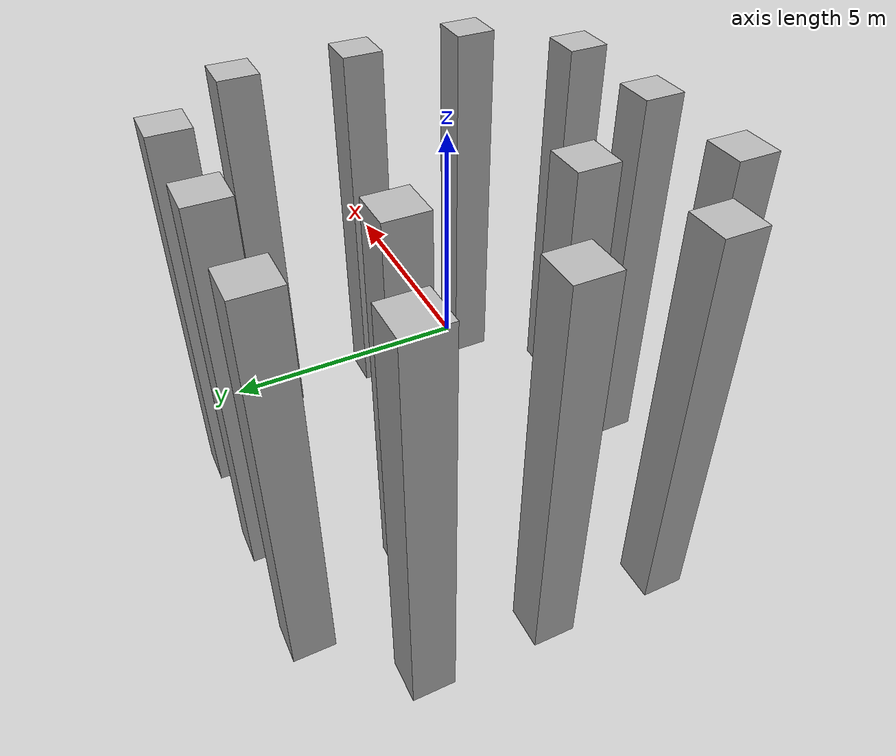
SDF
<sdf version="1.6">
 <world name="underwater_world">
  <plugin filename="gz-sim-physics-system" name="gz::sim::systems::Physics"/>
  <plugin filename="gz-sim-user-commands-system" name="gz::sim::systems::UserCommands"/>
  <plugin filename="gz-sim-scene-broadcaster-system" name="gz::sim::systems::SceneBroadcaster"/>
  <plugin filename="libgz-sim8-dvl-system" name="gz::sim::systems::DopplerVelocityLogSystem"/>
  <plugin filename="libgz-sim-imu-system.so" name="gz::sim::systems::Imu"/>
  <plugin filename="gz-sim-buoyancy-system" name="gz::sim::systems::Buoyancy">
   <graded_buoyancy>
    <default_density>1000</default_density>
    <density_change><above_depth>0</above_depth><density>1</density></density_change>
   </graded_buoyancy>
  </plugin>
  <plugin filename="libcurrent_system.so" name="CurrentSystem">
   <vx>0.0</vx>
   <vy>0.0</vy>
   <vz>0.0</vz>
   <rho>1000.0</rho>
   <drag_coeff>0.8</drag_coeff>
   <area>0.03</area>
   <affected_models><model>bluerov2</model></affected_models>
  </plugin>
  <include><uri>https://fuel.gazebosim.org/1.0/OpenRobotics/models/Sun</uri></include>
  <include><uri>model://ego_test</uri></include>
  <scene><ambient>1.0 1.0 1.0</ambient><background>0.8 0.8 0.8</background></scene>
  <light type="directional" name="sun1">
   <pose>50 0 150 0 0 0</pose>
   <diffuse>1 1 1 1</diffuse>
   <specular>.1 .1 .1 1</specular>
   <direction>0.3 0.3 -1</direction>
   <cast_shadows>false</cast_shadows>
  </light>
 </world>
</sdf>

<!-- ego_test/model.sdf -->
<!-- Luis Blunschi pillar field, square posts -->
<sdf version="1.6">
  <model name="pillar_field">
    <static>true</static>

    <link name="pillars">

      <!-- Shared geometry:
           box 1 x 1 x 10 (z from -5 to +5), centered at z = 0 -->

      <!-- Pillar at (5, 3) -->
      <collision name="pillar_5_3_collision">
        <pose>5 3 0 0 0 0</pose>
        <geometry>
          <box>
            <size>1 1 10</size>
          </box>
        </geometry>
      </collision>
      <visual name="pillar_5_3_visual">
        <pose>5 3 0 0 0 0</pose>
        <geometry>
          <box>
            <size>1 1 10</size>
          </box>
        </geometry>
        <material>
          <ambient>0.7 0.7 0.7 1</ambient>
          <diffuse>0.7 0.7 0.7 1</diffuse>
        </material>
      </visual>

      <!-- Pillar at (5, 0) -->
      <collision name="pillar_5_0_collision">
        <pose>5 0 0 0 0 0</pose>
        <geometry>
          <box>
            <size>1 1 10</size>
          </box>
        </geometry>
      </collision>
      <visual name="pillar_5_0_visual">
        <pose>5 0 0 0 0 0</pose>
        <geometry>
          <box>
            <size>1 1 10</size>
          </box>
        </geometry>
        <material>
          <ambient>0.7 0.7 0.7 1</ambient>
          <diffuse>0.7 0.7 0.7 1</diffuse>
        </material>
      </visual>

      <!-- Pillar at (5, -3) -->
      <collision name="pillar_5_-3_collision">
        <pose>5 -3 0 0 0 0</pose>
        <geometry>
          <box>
            <size>1 1 10</size>
          </box>
        </geometry>
      </collision>
      <visual name="pillar_5_-3_visual">
        <pose>5 -3 0 0 0 0</pose>
        <geometry>
          <box>
            <size>1 1 10</size>
          </box>
        </geometry>
        <material>
          <ambient>0.7 0.7 0.7 1</ambient>
          <diffuse>0.7 0.7 0.7 1</diffuse>
        </material>
      </visual>

      <!-- Pillar at (0, 5) -->
      <collision name="pillar_0_5_collision">
        <pose>0 5 0 0 0 0</pose>
        <geometry>
          <box>
            <size>1 1 10</size>
          </box>
        </geometry>
      </collision>
      <visual name="pillar_0_5_visual">
        <pose>0 5 0 0 0 0</pose>
        <geometry>
          <box>
            <size>1 1 10</size>
          </box>
        </geometry>
        <material>
          <ambient>0.7 0.7 0.7 1</ambient>
          <diffuse>0.7 0.7 0.7 1</diffuse>
        </material>
      </visual>

      <!-- Pillar at (0, -5) -->
      <collision name="pillar_0_-5_collision">
        <pose>0 -5 0 0 0 0</pose>
        <geometry>
          <box>
            <size>1 1 10</size>
          </box>
        </geometry>
      </collision>
      <visual name="pillar_0_-5_visual">
        <pose>0 -5 0 0 0 0</pose>
        <geometry>
          <box>
            <size>1 1 10</size>
          </box>
        </geometry>
        <material>
          <ambient>0.7 0.7 0.7 1</ambient>
          <diffuse>0.7 0.7 0.7 1</diffuse>
        </material>
      </visual>

      <!-- Pillar at (-5, 3) -->
      <collision name="pillar_-5_3_collision">
        <pose>-5 3 0 0 0 0</pose>
        <geometry>
          <box>
            <size>1 1 10</size>
          </box>
        </geometry>
      </collision>
      <visual name="pillar_-5_3_visual">
        <pose>-5 3 0 0 0 0</pose>
        <geometry>
          <box>
            <size>1 1 10</size>
          </box>
        </geometry>
        <material>
          <ambient>0.7 0.7 0.7 1</ambient>
          <diffuse>0.7 0.7 0.7 1</diffuse>
        </material>
      </visual>

      <!-- Pillar at (-5, 0) -->
      <collision name="pillar_-5_0_collision">
        <pose>-5 0 0 0 0 0</pose>
        <geometry>
          <box>
            <size>1 1 10</size>
          </box>
        </geometry>
      </collision>
      <visual name="pillar_-5_0_visual">
        <pose>-5 0 0 0 0 0</pose>
        <geometry>
          <box>
            <size>1 1 10</size>
          </box>
        </geometry>
        <material>
          <ambient>0.7 0.7 0.7 1</ambient>
          <diffuse>0.7 0.7 0.7 1</diffuse>
        </material>
      </visual>

      <!-- Pillar at (-5, -3) -->
      <collision name="pillar_-5_-3_collision">
        <pose>-5 -3 0 0 0 0</pose>
        <geometry>
          <box>
            <size>1 1 10</size>
          </box>
        </geometry>
      </collision>
      <visual name="pillar_-5_-3_visual">
        <pose>-5 -3 0 0 0 0</pose>
        <geometry>
          <box>
            <size>1 1 10</size>
          </box>
        </geometry>
        <material>
          <ambient>0.7 0.7 0.7 1</ambient>
          <diffuse>0.7 0.7 0.7 1</diffuse>
        </material>
      </visual>

      <!-- Pillar at (3, 5) -->
      <collision name="pillar_3_5_collision">
        <pose>3 5 0 0 0 0</pose>
        <geometry>
          <box>
            <size>1 1 10</size>
          </box>
        </geometry>
      </collision>
      <visual name="pillar_3_5_visual">
        <pose>3 5 0 0 0 0</pose>
        <geometry>
          <box>
            <size>1 1 10</size>
          </box>
        </geometry>
        <material>
          <ambient>0.7 0.7 0.7 1</ambient>
          <diffuse>0.7 0.7 0.7 1</diffuse>
        </material>
      </visual>

      <!-- Pillar at (-3, -5) -->
      <collision name="pillar_-3_-5_collision">
        <pose>-3 -5 0 0 0 0</pose>
        <geometry>
          <box>
            <size>1 1 10</size>
          </box>
        </geometry>
      </collision>
      <visual name="pillar_-3_-5_visual">
        <pose>-3 -5 0 0 0 0</pose>
        <geometry>
          <box>
            <size>1 1 10</size>
          </box>
        </geometry>
        <material>
          <ambient>0.7 0.7 0.7 1</ambient>
          <diffuse>0.7 0.7 0.7 1</diffuse>
        </material>
      </visual>

      <!-- Pillar at (-3, 5) -->
      <collision name="pillar_-3_5_collision">
        <pose>-3 5 0 0 0 0</pose>
        <geometry>
          <box>
            <size>1 1 10</size>
          </box>
        </geometry>
      </collision>
      <visual name="pillar_-3_5_visual">
        <pose>-3 5 0 0 0 0</pose>
        <geometry>
          <box>
            <size>1 1 10</size>
          </box>
        </geometry>
        <material>
          <ambient>0.7 0.7 0.7 1</ambient>
          <diffuse>0.7 0.7 0.7 1</diffuse>
        </material>
      </visual>

      <!-- Pillar at (3, -5) -->
      <collision name="pillar_3_-5_collision">
        <pose>3 -5 0 0 0 0</pose>
        <geometry>
          <box>
            <size>1 1 10</size>
          </box>
        </geometry>
      </collision>
      <visual name="pillar_3_-5_visual">
        <pose>3 -5 0 0 0 0</pose>
        <geometry>
          <box>
            <size>1 1 10</size>
          </box>
        </geometry>
        <material>
          <ambient>0.7 0.7 0.7 1</ambient>
          <diffuse>0.7 0.7 0.7 1</diffuse>
        </material>
      </visual>

      <!-- Pillar at (-2, 2) -->
      <collision name="pillar_-2_2_collision">
        <pose>-2 2 0 0 0 0</pose>
        <geometry>
          <box>
            <size>1 1 10</size>
          </box>
        </geometry>
      </collision>
      <visual name="pillar_-2_2_visual">
        <pose>-2 2 0 0 0 0</pose>
        <geometry>
          <box>
            <size>1 1 10</size>
          </box>
        </geometry>
        <material>
          <ambient>0.7 0.7 0.7 1</ambient>
          <diffuse>0.7 0.7 0.7 1</diffuse>
        </material>
      </visual>

      <!-- Pillar at (-2, -2) -->
      <collision name="pillar_-2_-2_collision">
        <pose>-2 -2 0 0 0 0</pose>
        <geometry>
          <box>
            <size>1 1 10</size>
          </box>
        </geometry>
      </collision>
      <visual name="pillar_-2_-2_visual">
        <pose>-2 -2 0 0 0 0</pose>
        <geometry>
          <box>
            <size>1 1 10</size>
          </box>
        </geometry>
        <material>
          <ambient>0.7 0.7 0.7 1</ambient>
          <diffuse>0.7 0.7 0.7 1</diffuse>
        </material>
      </visual>

    </link>
  </model>
</sdf>
